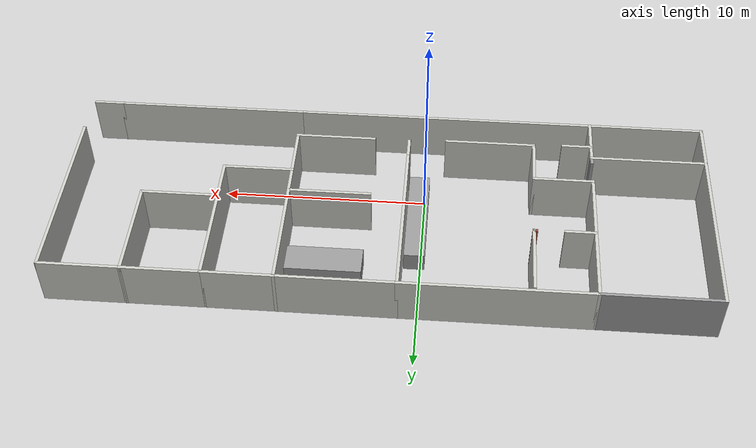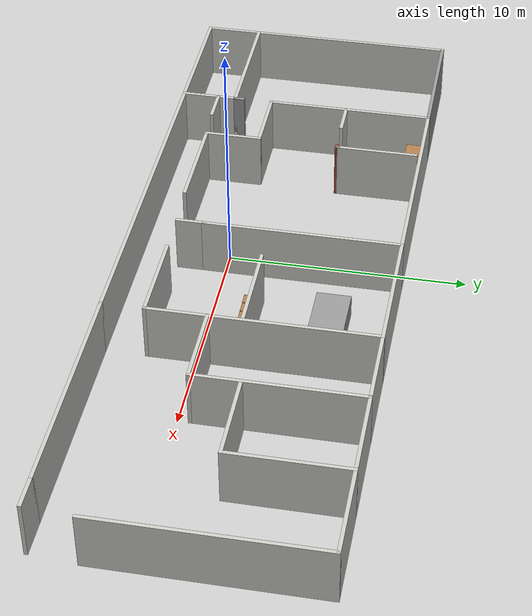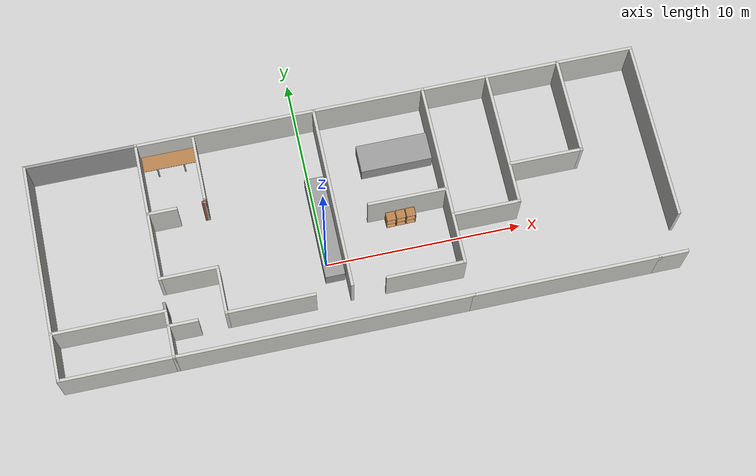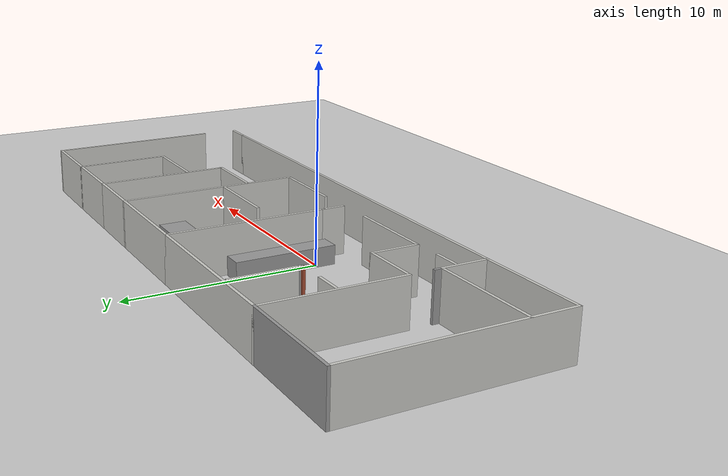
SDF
<sdf version="1.6">
 <world name="default">
  <model name="ground_plane">
   <static>1</static>
   <link name="link">
    <collision name="collision">
     <geometry><plane><normal>0 0 1</normal><size>100 100</size></plane></geometry>
     <surface><friction><ode><mu>100</mu><mu2>50</mu2></ode></friction></surface>
    </collision>
    <visual name="visual">
     <cast_shadows>0</cast_shadows>
     <geometry><plane><normal>0 0 1</normal><size>100 100</size></plane></geometry>
     <material>
      <script><uri>file://media/materials/scripts/gazebo.material</uri><name>Gazebo/Grey</name></script>
     </material>
    </visual>
   </link>
  </model>
  <model name="workplace">
   <pose>1.82011 1.79563 0 0 -0 0</pose>
   <link name="Wall_0">
    <collision name="Wall_0_Collision">
     <geometry><box><size>8.25 0.15 2.5</size></box></geometry>
     <pose>0 0 1.25 0 -0 0</pose>
    </collision>
    <visual name="Wall_0_Visual">
     <pose>0 0 1.25 0 -0 0</pose>
     <geometry><box><size>8.25 0.15 2.5</size></box></geometry>
     <material>
      <script><uri>file://media/materials/scripts/gazebo.material</uri><name>Gazebo/CeilingTiled</name></script>
      <ambient>1 1 1 1</ambient>
     </material>
     <meta><layer>0</layer></meta>
    </visual>
    <pose>-0.915173 1.35976 0 0 -0 1.5708</pose>
   </link>
   <link name="Wall_10">
    <collision name="Wall_10_Collision">
     <geometry><box><size>1.25 0.15 2.5</size></box></geometry>
     <pose>0 0 1.25 0 -0 0</pose>
    </collision>
    <visual name="Wall_10_Visual">
     <pose>0 0 1.25 0 -0 0</pose>
     <geometry><box><size>1.25 0.15 2.5</size></box></geometry>
     <material>
      <script><uri>file://media/materials/scripts/gazebo.material</uri><name>Gazebo/CeilingTiled</name></script>
      <ambient>1 1 1 1</ambient>
     </material>
     <meta><layer>0</layer></meta>
    </visual>
    <pose>-0.915173 -3.24024 0 0 -0 -1.5708</pose>
   </link>
   <link name="Wall_15">
    <collision name="Wall_15_Collision">
     <geometry><box><size>14.75 0.15 2.5</size></box></geometry>
     <pose>0 0 1.25 0 -0 0</pose>
    </collision>
    <visual name="Wall_15_Visual">
     <pose>0 0 1.25 0 -0 0</pose>
     <geometry><box><size>14.75 0.15 2.5</size></box></geometry>
     <material>
      <script><uri>file://media/materials/scripts/gazebo.material</uri><name>Gazebo/CeilingTiled</name></script>
      <ambient>1 1 1 1</ambient>
     </material>
     <meta><layer>0</layer></meta>
    </visual>
    <pose>-2.55759 -5.55178 0 0 -0 0</pose>
   </link>
   <link name="Wall_18">
    <collision name="Wall_18_Collision">
     <geometry><box><size>5.75 0.15 2.5</size></box></geometry>
     <pose>0 0 1.25 0 -0 0</pose>
    </collision>
    <visual name="Wall_18_Visual">
     <pose>0 0 1.25 0 -0 0</pose>
     <geometry><box><size>5.75 0.15 2.5</size></box></geometry>
     <material>
      <script><uri>file://media/materials/scripts/gazebo.material</uri><name>Gazebo/CeilingTiled</name></script>
      <ambient>1 1 1 1</ambient>
     </material>
     <meta><layer>0</layer></meta>
    </visual>
    <pose>1.90232 5.54454 0 0 -0 0</pose>
   </link>
   <link name="Wall_19">
    <collision name="Wall_19_Collision">
     <geometry><box><size>9.5 0.15 2.5</size></box></geometry>
     <pose>0 0 1.25 0 -0 0</pose>
    </collision>
    <visual name="Wall_19_Visual">
     <pose>0 0 1.25 0 -0 0</pose>
     <geometry><box><size>9.5 0.15 2.5</size></box></geometry>
     <material>
      <script><uri>file://media/materials/scripts/gazebo.material</uri><name>Gazebo/CeilingTiled</name></script>
      <ambient>1 1 1 1</ambient>
     </material>
     <meta><layer>0</layer></meta>
    </visual>
    <pose>4.70232 0.869544 0 0 -0 -1.5708</pose>
   </link>
   <link name="Wall_2">
    <collision name="Wall_2_Collision">
     <geometry><box><size>7.25 0.15 2.5</size></box></geometry>
     <pose>0 0 1.25 0 -0 0</pose>
    </collision>
    <visual name="Wall_2_Visual">
     <pose>0 0 1.25 0 -0 0</pose>
     <geometry><box><size>7.25 0.15 2.5</size></box></geometry>
     <material>
      <script><uri>file://media/materials/scripts/gazebo.material</uri><name>Gazebo/CeilingTiled</name></script>
      <ambient>1 1 1 1</ambient>
     </material>
     <meta><layer>0</layer></meta>
    </visual>
    <pose>-9.99768 1.99454 0 0 -0 -1.5708</pose>
   </link>
   <link name="Wall_20">
    <collision name="Wall_20_Collision">
     <geometry><box><size>4 0.15 2.5</size></box></geometry>
     <pose>0 0 1.25 0 -0 0</pose>
    </collision>
    <visual name="Wall_20_Visual">
     <pose>0 0 1.25 0 -0 0</pose>
     <geometry><box><size>4 0.15 2.5</size></box></geometry>
     <material>
      <script><uri>file://media/materials/scripts/gazebo.material</uri><name>Gazebo/CeilingTiled</name></script>
      <ambient>1 1 1 1</ambient>
     </material>
     <meta><layer>0</layer></meta>
    </visual>
    <pose>2.77732 -3.80546 0 0 -0 3.14159</pose>
   </link>
   <link name="Wall_22">
    <collision name="Wall_22_Collision">
     <geometry><box><size>4 0.15 2.5</size></box></geometry>
     <pose>0 0 1.25 0 -0 0</pose>
    </collision>
    <visual name="Wall_22_Visual">
     <pose>0 0 1.25 0 -0 0</pose>
     <geometry><box><size>4 0.15 2.5</size></box></geometry>
     <material>
      <script><uri>file://media/materials/scripts/gazebo.material</uri><name>Gazebo/CeilingTiled</name></script>
      <ambient>1 1 1 1</ambient>
     </material>
     <meta><layer>0</layer></meta>
    </visual>
    <pose>2.69206 0.076156 0 0 -0 3.14159</pose>
   </link>
   <link name="Wall_29">
    <collision name="Wall_29_Collision">
     <geometry><box><size>3.5 0.15 2.5</size></box></geometry>
     <pose>0 0 1.25 0 -0 0</pose>
    </collision>
    <visual name="Wall_29_Visual">
     <pose>0 0 1.25 0 -0 0</pose>
     <geometry><box><size>3.5 0.15 2.5</size></box></geometry>
     <material>
      <script><uri>file://media/materials/scripts/gazebo.material</uri><name>Gazebo/CeilingTiled</name></script>
      <ambient>1 1 1 1</ambient>
     </material>
     <meta><layer>0</layer></meta>
    </visual>
    <pose>-7.11284 3.66004 0 0 -0 1.5708</pose>
   </link>
   <link name="Wall_3">
    <collision name="Wall_3_Collision">
     <geometry><box><size>3 0.15 2.5</size></box></geometry>
     <pose>0 0 1.25 0 -0 0</pose>
    </collision>
    <visual name="Wall_3_Visual">
     <pose>0 0 1.25 0 -0 0</pose>
     <geometry><box><size>3 0.15 2.5</size></box></geometry>
     <material>
      <script><uri>file://media/materials/scripts/gazebo.material</uri><name>Gazebo/CeilingTiled</name></script>
      <ambient>1 1 1 1</ambient>
     </material>
     <meta><layer>0</layer></meta>
    </visual>
    <pose>-8.57268 -1.55546 0 0 -0 0</pose>
   </link>
   <link name="Wall_32">
    <collision name="Wall_32_Collision">
     <geometry><box><size>1.5 0.15 2.5</size></box></geometry>
     <pose>0 0 1.25 0 -0 0</pose>
    </collision>
    <visual name="Wall_32_Visual">
     <pose>0 0 1.25 0 -0 0</pose>
     <geometry><box><size>1.5 0.15 2.5</size></box></geometry>
     <material>
      <script><uri>file://media/materials/scripts/gazebo.material</uri><name>Gazebo/CeilingTiled</name></script>
      <ambient>1 1 1 1</ambient>
     </material>
     <meta><layer>0</layer></meta>
    </visual>
    <pose>-9.27823 1.85026 0 0 -0 0</pose>
   </link>
   <link name="Wall_39">
    <collision name="Wall_39_Collision">
     <geometry><box><size>0.25 0.15 2.5</size></box></geometry>
     <pose>0 0 1.25 0 -0 0</pose>
    </collision>
    <visual name="Wall_39_Visual">
     <pose>0 0 1.25 0 -0 0</pose>
     <geometry><box><size>0.25 0.15 2.5</size></box></geometry>
     <material>
      <script><uri>file://media/materials/scripts/gazebo.material</uri><name>Gazebo/Grey</name></script>
      <ambient>1 1 1 1</ambient>
     </material>
     <meta><layer>0</layer></meta>
    </visual>
    <pose>-7.11284 1.93504 0 0 -0 -1.5708</pose>
   </link>
   <link name="Wall_4">
    <collision name="Wall_4_Collision">
     <geometry><box><size>2.5 0.15 2.5</size></box></geometry>
     <pose>0 0 1.25 0 -0 0</pose>
    </collision>
    <visual name="Wall_4_Visual">
     <pose>0 0 1.25 0 -0 0</pose>
     <geometry><box><size>2.5 0.15 2.5</size></box></geometry>
     <material>
      <script><uri>file://media/materials/scripts/gazebo.material</uri><name>Gazebo/CeilingTiled</name></script>
      <ambient>1 1 1 1</ambient>
     </material>
     <meta><layer>0</layer></meta>
    </visual>
    <pose>-7.14768 -2.73046 0 0 -0 -1.5708</pose>
   </link>
   <link name="Wall_40">
    <collision name="Wall_40_Collision">
     <geometry><box><size>0.25 0.15 2.5</size></box></geometry>
     <pose>0 0 1.25 0 -0 0</pose>
    </collision>
    <visual name="Wall_40_Visual">
     <pose>0 0 1.25 0 -0 0</pose>
     <geometry><box><size>0.25 0.15 2.5</size></box></geometry>
     <material>
      <script><uri>file://media/materials/scripts/gazebo.material</uri><name>Gazebo/Bricks</name></script>
      <ambient>1 1 1 1</ambient>
     </material>
     <meta><layer>0</layer></meta>
    </visual>
    <pose>-7.16284 1.88504 0 0 -0 3.14159</pose>
   </link>
   <link name="Wall_5">
    <collision name="Wall_5_Collision">
     <geometry><box><size>4.5 0.15 2.5</size></box></geometry>
     <pose>0 0 1.25 0 -0 0</pose>
    </collision>
    <visual name="Wall_5_Visual">
     <pose>0 0 1.25 0 -0 0</pose>
     <geometry><box><size>4.5 0.15 2.5</size></box></geometry>
     <material>
      <script><uri>file://media/materials/scripts/gazebo.material</uri><name>Gazebo/CeilingTiled</name></script>
      <ambient>1 1 1 1</ambient>
     </material>
     <meta><layer>0</layer></meta>
    </visual>
    <pose>-4.97268 -3.90546 0 0 -0 0</pose>
   </link>
   <link name="Wall_59">
    <collision name="Wall_59_Collision">
     <geometry><box><size>5.75 0.15 2.5</size></box></geometry>
     <pose>0 0 1.25 0 -0 0</pose>
    </collision>
    <visual name="Wall_59_Visual">
     <pose>0 0 1.25 0 -0 0</pose>
     <geometry><box><size>5.75 0.15 2.5</size></box></geometry>
     <material>
      <script><uri>file://media/materials/scripts/gazebo.material</uri><name>Gazebo/Grey</name></script>
      <ambient>1 1 1 1</ambient>
     </material>
     <meta><layer>0</layer></meta>
    </visual>
    <pose>-12.7977 5.54454 0 0 -0 3.14159</pose>
   </link>
   <link name="Wall_60">
    <collision name="Wall_60_Collision">
     <geometry><box><size>11.25 0.15 2.5</size></box></geometry>
     <pose>0 0 1.25 0 -0 0</pose>
    </collision>
    <visual name="Wall_60_Visual">
     <pose>0 0 1.25 0 -0 0</pose>
     <geometry><box><size>11.25 0.15 2.5</size></box></geometry>
     <material>
      <script><uri>file://media/materials/scripts/gazebo.material</uri><name>Gazebo/CeilingTiled</name></script>
      <ambient>1 1 1 1</ambient>
     </material>
     <meta><layer>0</layer></meta>
    </visual>
    <pose>-15.5977 -0.005456 0 0 -0 -1.5708</pose>
   </link>
   <link name="Wall_61">
    <collision name="Wall_61_Collision">
     <geometry><box><size>5.75 0.15 2.5</size></box></geometry>
     <pose>0 0 1.25 0 -0 0</pose>
    </collision>
    <visual name="Wall_61_Visual">
     <pose>0 0 1.25 0 -0 0</pose>
     <geometry><box><size>5.75 0.15 2.5</size></box></geometry>
     <material>
      <script><uri>file://media/materials/scripts/gazebo.material</uri><name>Gazebo/CeilingTiled</name></script>
      <ambient>1 1 1 1</ambient>
     </material>
     <meta><layer>0</layer></meta>
    </visual>
    <pose>-12.7977 -5.55546 0 0 -0 0</pose>
   </link>
   <link name="Wall_62">
    <collision name="Wall_62_Collision">
     <geometry><box><size>2.5 0.15 2.5</size></box></geometry>
     <pose>0 0 1.25 0 -0 0</pose>
    </collision>
    <visual name="Wall_62_Visual">
     <pose>0 0 1.25 0 -0 0</pose>
     <geometry><box><size>2.5 0.15 2.5</size></box></geometry>
     <material>
      <script><uri>file://media/materials/scripts/gazebo.material</uri><name>Gazebo/CeilingTiled</name></script>
      <ambient>1 1 1 1</ambient>
     </material>
     <meta><layer>0</layer></meta>
    </visual>
    <pose>-9.99768 -4.38046 0 0 -0 1.5708</pose>
   </link>
   <link name="Wall_63">
    <collision name="Wall_63_Collision">
     <geometry><box><size>5.75 0.15 2.5</size></box></geometry>
     <pose>0 0 1.25 0 -0 0</pose>
    </collision>
    <visual name="Wall_63_Visual">
     <pose>0 0 1.25 0 -0 0</pose>
     <geometry><box><size>5.75 0.15 2.5</size></box></geometry>
     <material>
      <script><uri>file://media/materials/scripts/gazebo.material</uri><name>Gazebo/CeilingTiled</name></script>
      <ambient>1 1 1 1</ambient>
     </material>
     <meta><layer>0</layer></meta>
    </visual>
    <pose>-12.7977 -3.20546 0 0 -0 3.14159</pose>
   </link>
   <link name="Wall_65">
    <collision name="Wall_65_Collision">
     <geometry><box><size>1.5 0.15 2.5</size></box></geometry>
     <pose>0 0 1.25 0 -0 0</pose>
    </collision>
    <visual name="Wall_65_Visual">
     <pose>0 0 1.25 0 -0 0</pose>
     <geometry><box><size>1.5 0.15 2.5</size></box></geometry>
     <material>
      <script><uri>file://media/materials/scripts/gazebo.material</uri><name>Gazebo/CeilingTiled</name></script>
      <ambient>1 1 1 1</ambient>
     </material>
     <meta><layer>0</layer></meta>
    </visual>
    <pose>-9.27951 -3.98773 0 0 -0 0</pose>
   </link>
   <link name="Wall_68">
    <collision name="Wall_68_Collision">
     <geometry><box><size>0.5 0.15 2.5</size></box></geometry>
     <pose>0 0 1.25 0 -0 0</pose>
    </collision>
    <visual name="Wall_68_Visual">
     <pose>0 0 1.25 0 -0 0</pose>
     <geometry><box><size>0.5 0.15 2.5</size></box></geometry>
     <material>
      <script><uri>file://media/materials/scripts/gazebo.material</uri><name>Gazebo/Grey</name></script>
      <ambient>1 1 1 1</ambient>
     </material>
     <meta><layer>0</layer></meta>
    </visual>
    <pose>-9.99768 -3.03046 0 0 -0 1.5708</pose>
   </link>
   <link name="Wall_70">
    <collision name="Wall_70_Collision">
     <geometry><box><size>3.5 0.15 2.5</size></box></geometry>
     <pose>0 0 1.25 0 -0 0</pose>
    </collision>
    <visual name="Wall_70_Visual">
     <pose>0 0 1.25 0 -0 0</pose>
     <geometry><box><size>3.5 0.15 2.5</size></box></geometry>
     <material>
      <script><uri>file://media/materials/scripts/gazebo.material</uri><name>Gazebo/CeilingTiled</name></script>
      <ambient>1 1 1 1</ambient>
     </material>
     <meta><layer>0</layer></meta>
    </visual>
    <pose>6.37732 5.54454 0 0 -0 0</pose>
   </link>
   <link name="Wall_73">
    <collision name="Wall_73_Collision">
     <geometry><box><size>7 0.15 2.5</size></box></geometry>
     <pose>0 0 1.25 0 -0 0</pose>
    </collision>
    <visual name="Wall_73_Visual">
     <pose>0 0 1.25 0 -0 0</pose>
     <geometry><box><size>7 0.15 2.5</size></box></geometry>
     <material>
      <script><uri>file://media/materials/scripts/gazebo.material</uri><name>Gazebo/CeilingTiled</name></script>
      <ambient>1 1 1 1</ambient>
     </material>
     <meta><layer>0</layer></meta>
    </visual>
    <pose>8.05232 2.11954 0 0 -0 -1.5708</pose>
   </link>
   <link name="Wall_76">
    <collision name="Wall_76_Collision">
     <geometry><box><size>3.5 0.15 2.5</size></box></geometry>
     <pose>0 0 1.25 0 -0 0</pose>
    </collision>
    <visual name="Wall_76_Visual">
     <pose>0 0 1.25 0 -0 0</pose>
     <geometry><box><size>3.5 0.15 2.5</size></box></geometry>
     <material>
      <script><uri>file://media/materials/scripts/gazebo.material</uri><name>Gazebo/CeilingTiled</name></script>
      <ambient>1 1 1 1</ambient>
     </material>
     <meta><layer>0</layer></meta>
    </visual>
    <pose>6.37732 -1.30546 0 0 -0 3.14159</pose>
   </link>
   <link name="Wall_78">
    <collision name="Wall_78_Collision">
     <geometry><box><size>9.5 0.15 2.5</size></box></geometry>
     <pose>0 0 1.25 0 -0 0</pose>
    </collision>
    <visual name="Wall_78_Visual">
     <pose>0 0 1.25 0 -0 0</pose>
     <geometry><box><size>9.5 0.15 2.5</size></box></geometry>
     <material>
      <script><uri>file://media/materials/scripts/gazebo.material</uri><name>Gazebo/CeilingTiled</name></script>
      <ambient>1 1 1 1</ambient>
     </material>
     <meta><layer>0</layer></meta>
    </visual>
    <pose>9.41741 -5.55178 0 0 -0 0</pose>
   </link>
   <link name="Wall_8">
    <collision name="Wall_8_Collision">
     <geometry><box><size>9.25 0.15 2.5</size></box></geometry>
     <pose>0 0 1.25 0 -0 0</pose>
    </collision>
    <visual name="Wall_8_Visual">
     <pose>0 0 1.25 0 -0 0</pose>
     <geometry><box><size>9.25 0.15 2.5</size></box></geometry>
     <material>
      <script><uri>file://media/materials/scripts/gazebo.material</uri><name>Gazebo/CeilingTiled</name></script>
      <ambient>1 1 1 1</ambient>
     </material>
     <meta><layer>0</layer></meta>
    </visual>
    <pose>-5.44768 5.54454 0 0 -0 0</pose>
   </link>
   <link name="Wall_82">
    <collision name="Wall_82_Collision">
     <geometry><box><size>3.75 0.15 2.5</size></box></geometry>
     <pose>0 0 1.25 0 -0 0</pose>
    </collision>
    <visual name="Wall_82_Visual">
     <pose>0 0 1.25 0 -0 0</pose>
     <geometry><box><size>3.75 0.15 2.5</size></box></geometry>
     <material>
      <script><uri>file://media/materials/scripts/gazebo.material</uri><name>Gazebo/CeilingTiled</name></script>
      <ambient>1 1 1 1</ambient>
     </material>
     <meta><layer>0</layer></meta>
    </visual>
    <pose>9.94768 0.70524 0 0 -0 0</pose>
   </link>
   <link name="Wall_83">
    <collision name="Wall_83_Collision">
     <geometry><box><size>5 0.15 2.5</size></box></geometry>
     <pose>0 0 1.25 0 -0 0</pose>
    </collision>
    <visual name="Wall_83_Visual">
     <pose>0 0 1.25 0 -0 0</pose>
     <geometry><box><size>5 0.15 2.5</size></box></geometry>
     <material>
      <script><uri>file://media/materials/scripts/gazebo.material</uri><name>Gazebo/CeilingTiled</name></script>
      <ambient>1 1 1 1</ambient>
     </material>
     <meta><layer>0</layer></meta>
    </visual>
    <pose>11.7477 3.13024 0 0 -0 1.5708</pose>
   </link>
   <link name="Wall_84">
    <collision name="Wall_84_Collision">
     <geometry><box><size>3.84538 0.15 2.5</size></box></geometry>
     <pose>0 0 1.25 0 -0 0</pose>
    </collision>
    <visual name="Wall_84_Visual">
     <pose>0 0 1.25 0 -0 0</pose>
     <geometry><box><size>3.84538 0.15 2.5</size></box></geometry>
     <material>
      <script><uri>file://media/materials/scripts/gazebo.material</uri><name>Gazebo/CeilingTiled</name></script>
      <ambient>1 1 1 1</ambient>
     </material>
     <meta><layer>0</layer></meta>
    </visual>
    <pose>9.9 5.54989 0 0 -0 -3.1387</pose>
   </link>
   <link name="Wall_89">
    <collision name="Wall_89_Collision">
     <geometry><box><size>4 0.15 2.5</size></box></geometry>
     <pose>0 0 1.25 0 -0 0</pose>
    </collision>
    <visual name="Wall_89_Visual">
     <pose>0 0 1.25 0 -0 0</pose>
     <geometry><box><size>4 0.15 2.5</size></box></geometry>
     <material>
      <script><uri>file://media/materials/scripts/gazebo.material</uri><name>Gazebo/CeilingTiled</name></script>
      <ambient>1 1 1 1</ambient>
     </material>
     <meta><layer>0</layer></meta>
    </visual>
    <pose>13.6727 5.55524 0 0 -0 0</pose>
   </link>
   <link name="Wall_90">
    <collision name="Wall_90_Collision">
     <geometry><box><size>9.25 0.15 2.5</size></box></geometry>
     <pose>0 0 1.25 0 -0 0</pose>
    </collision>
    <visual name="Wall_90_Visual">
     <pose>0 0 1.25 0 -0 0</pose>
     <geometry><box><size>9.25 0.15 2.5</size></box></geometry>
     <material>
      <script><uri>file://media/materials/scripts/gazebo.material</uri><name>Gazebo/CeilingTiled</name></script>
      <ambient>1 1 1 1</ambient>
     </material>
     <meta><layer>0</layer></meta>
    </visual>
    <pose>15.5977 1.00524 0 0 -0 -1.5708</pose>
   </link>
   <link name="Wall_92">
    <collision name="Wall_92_Collision">
     <geometry><box><size>1.5 0.15 2.5</size></box></geometry>
     <pose>0 0 1.25 0 -0 0</pose>
    </collision>
    <visual name="Wall_92_Visual">
     <pose>0 0 1.25 0 -0 0</pose>
     <geometry><box><size>1.5 0.15 2.5</size></box></geometry>
     <material>
      <script><uri>file://media/materials/scripts/gazebo.material</uri><name>Gazebo/CeilingTiled</name></script>
      <ambient>1 1 1 1</ambient>
     </material>
     <meta><layer>0</layer></meta>
    </visual>
    <pose>14.7674 -5.55178 0 0 -0 0</pose>
   </link>
   <static>1</static>
  </model>
  <model name="table_clone">
   <link name="link">
    <pose>0.29068 0 0 0 -0 0</pose>
    <inertial>
     <inertia><ixx>0</ixx><ixy>0</ixy><ixz>0</ixz><iyy>0</iyy><iyz>0</iyz><izz>0</izz></inertia>
     <mass>0</mass>
    </inertial>
    <visual name="back_left_leg">
     <pose>-0.68 0.38 0.5 0 -0 0</pose>
     <geometry><cylinder><radius>0.0363517</radius><length>1</length></cylinder></geometry>
     <material>
      <script><uri>file://media/materials/scripts/gazebo.material</uri><name>Gazebo/Grey</name></script>
     </material>
    </visual>
    <visual name="front_right_leg">
     <pose>0.68 -0.38 0.5 0 -0 0</pose>
     <geometry><cylinder><radius>0.0363517</radius><length>1</length></cylinder></geometry>
     <material>
      <script><uri>file://media/materials/scripts/gazebo.material</uri><name>Gazebo/Grey</name></script>
     </material>
    </visual>
    <visual name="back_right_leg">
     <pose>-0.68 -0.38 0.5 0 -0 0</pose>
     <geometry><cylinder><radius>0.0363517</radius><length>1</length></cylinder></geometry>
     <material>
      <script><uri>file://media/materials/scripts/gazebo.material</uri><name>Gazebo/Grey</name></script>
     </material>
    </visual>
    <visual name="front_left_leg">
     <pose>0.68 0.38 0.5 0 -0 0</pose>
     <geometry><cylinder><radius>0.0363517</radius><length>1</length></cylinder></geometry>
     <material>
      <script><uri>file://media/materials/scripts/gazebo.material</uri><name>Gazebo/Grey</name></script>
     </material>
    </visual>
    <visual name="visual1">
     <pose>0 0 1 0 -0 0</pose>
     <geometry><box><size>2.76183 0.8 0.03</size></box></geometry>
     <material>
      <script><uri>file://media/materials/scripts/gazebo.material</uri><name>Gazebo/Wood</name></script>
     </material>
    </visual>
    <collision name="front_left_leg">
     <pose>0.68 0.38 0.5 0 -0 0</pose>
     <geometry><cylinder><radius>0.036352</radius><length>1</length></cylinder></geometry>
     <surface>
      <friction>
       <ode><mu>1</mu><mu2>1</mu2><fdir1>0 0 0</fdir1><slip1>0</slip1><slip2>0</slip2></ode>
       <torsional>
        <coefficient>1</coefficient>
        <patch_radius>0</patch_radius>
        <surface_radius>0</surface_radius>
        <use_patch_radius>1</use_patch_radius>
        <ode><slip>0</slip></ode>
       </torsional>
      </friction>
      <bounce><restitution_coefficient>0</restitution_coefficient><threshold>1e+06</threshold></bounce>
      <contact>
       <collide_without_contact>0</collide_without_contact>
       <collide_without_contact_bitmask>1</collide_without_contact_bitmask>
       <collide_bitmask>1</collide_bitmask>
       <ode>
        <soft_cfm>0</soft_cfm>
        <soft_erp>0.2</soft_erp>
        <kp>1e+13</kp>
        <kd>1</kd>
        <max_vel>0.01</max_vel>
        <min_depth>0</min_depth>
       </ode>
       <bullet>
        <split_impulse>1</split_impulse>
        <split_impulse_penetration_threshold>-0.01</split_impulse_penetration_threshold>
        <soft_cfm>0</soft_cfm>
        <soft_erp>0.2</soft_erp>
        <kp>1e+13</kp>
        <kd>1</kd>
       </bullet>
      </contact>
     </surface>
    </collision>
    <collision name="front_right_leg">
     <pose>0.68 -0.38 0.5 0 -0 0</pose>
     <geometry><cylinder><radius>0.036352</radius><length>1</length></cylinder></geometry>
     <surface>
      <friction>
       <ode><mu>1</mu><mu2>1</mu2><fdir1>0 0 0</fdir1><slip1>0</slip1><slip2>0</slip2></ode>
       <torsional>
        <coefficient>1</coefficient>
        <patch_radius>0</patch_radius>
        <surface_radius>0</surface_radius>
        <use_patch_radius>1</use_patch_radius>
        <ode><slip>0</slip></ode>
       </torsional>
      </friction>
      <bounce><restitution_coefficient>0</restitution_coefficient><threshold>1e+06</threshold></bounce>
      <contact>
       <collide_without_contact>0</collide_without_contact>
       <collide_without_contact_bitmask>1</collide_without_contact_bitmask>
       <collide_bitmask>1</collide_bitmask>
       <ode>
        <soft_cfm>0</soft_cfm>
        <soft_erp>0.2</soft_erp>
        <kp>1e+13</kp>
        <kd>1</kd>
        <max_vel>0.01</max_vel>
        <min_depth>0</min_depth>
       </ode>
       <bullet>
        <split_impulse>1</split_impulse>
        <split_impulse_penetration_threshold>-0.01</split_impulse_penetration_threshold>
        <soft_cfm>0</soft_cfm>
        <soft_erp>0.2</soft_erp>
        <kp>1e+13</kp>
        <kd>1</kd>
       </bullet>
      </contact>
     </surface>
    </collision>
    <collision name="back_right_leg">
     <pose>-0.68 -0.38 0.5 0 -0 0</pose>
     <geometry><cylinder><radius>0.036352</radius><length>1</length></cylinder></geometry>
     <surface>
      <friction>
       <ode><mu>1</mu><mu2>1</mu2><fdir1>0 0 0</fdir1><slip1>0</slip1><slip2>0</slip2></ode>
       <torsional>
        <coefficient>1</coefficient>
        <patch_radius>0</patch_radius>
        <surface_radius>0</surface_radius>
        <use_patch_radius>1</use_patch_radius>
        <ode><slip>0</slip></ode>
       </torsional>
      </friction>
      <bounce><restitution_coefficient>0</restitution_coefficient><threshold>1e+06</threshold></bounce>
      <contact>
       <collide_without_contact>0</collide_without_contact>
       <collide_without_contact_bitmask>1</collide_without_contact_bitmask>
       <collide_bitmask>1</collide_bitmask>
       <ode>
        <soft_cfm>0</soft_cfm>
        <soft_erp>0.2</soft_erp>
        <kp>1e+13</kp>
        <kd>1</kd>
        <max_vel>0.01</max_vel>
        <min_depth>0</min_depth>
       </ode>
       <bullet>
        <split_impulse>1</split_impulse>
        <split_impulse_penetration_threshold>-0.01</split_impulse_penetration_threshold>
        <soft_cfm>0</soft_cfm>
        <soft_erp>0.2</soft_erp>
        <kp>1e+13</kp>
        <kd>1</kd>
       </bullet>
      </contact>
     </surface>
    </collision>
    <collision name="back_left_leg">
     <pose>-0.68 0.38 0.5 0 -0 0</pose>
     <geometry><cylinder><radius>0.036352</radius><length>1</length></cylinder></geometry>
     <surface>
      <friction>
       <ode><mu>1</mu><mu2>1</mu2><fdir1>0 0 0</fdir1><slip1>0</slip1><slip2>0</slip2></ode>
       <torsional>
        <coefficient>1</coefficient>
        <patch_radius>0</patch_radius>
        <surface_radius>0</surface_radius>
        <use_patch_radius>1</use_patch_radius>
        <ode><slip>0</slip></ode>
       </torsional>
      </friction>
      <bounce><restitution_coefficient>0</restitution_coefficient><threshold>1e+06</threshold></bounce>
      <contact>
       <collide_without_contact>0</collide_without_contact>
       <collide_without_contact_bitmask>1</collide_without_contact_bitmask>
       <collide_bitmask>1</collide_bitmask>
       <ode>
        <soft_cfm>0</soft_cfm>
        <soft_erp>0.2</soft_erp>
        <kp>1e+13</kp>
        <kd>1</kd>
        <max_vel>0.01</max_vel>
        <min_depth>0</min_depth>
       </ode>
       <bullet>
        <split_impulse>1</split_impulse>
        <split_impulse_penetration_threshold>-0.01</split_impulse_penetration_threshold>
        <soft_cfm>0</soft_cfm>
        <soft_erp>0.2</soft_erp>
        <kp>1e+13</kp>
        <kd>1</kd>
       </bullet>
      </contact>
     </surface>
    </collision>
    <collision name="surface">
     <pose>0 0 1 0 -0 0</pose>
     <geometry><box><size>2.76183 0.8 0.03</size></box></geometry>
     <surface>
      <friction>
       <ode><mu>0.6</mu><mu2>0.6</mu2><fdir1>0 0 0</fdir1><slip1>0</slip1><slip2>0</slip2></ode>
       <torsional>
        <coefficient>1</coefficient>
        <patch_radius>0</patch_radius>
        <surface_radius>0</surface_radius>
        <use_patch_radius>1</use_patch_radius>
        <ode><slip>0</slip></ode>
       </torsional>
      </friction>
      <bounce><restitution_coefficient>0</restitution_coefficient><threshold>1e+06</threshold></bounce>
      <contact>
       <collide_without_contact>0</collide_without_contact>
       <collide_without_contact_bitmask>1</collide_without_contact_bitmask>
       <collide_bitmask>1</collide_bitmask>
       <ode>
        <soft_cfm>0</soft_cfm>
        <soft_erp>0.2</soft_erp>
        <kp>1e+13</kp>
        <kd>1</kd>
        <max_vel>0.01</max_vel>
        <min_depth>0</min_depth>
       </ode>
       <bullet>
        <split_impulse>1</split_impulse>
        <split_impulse_penetration_threshold>-0.01</split_impulse_penetration_threshold>
        <soft_cfm>0</soft_cfm>
        <soft_erp>0.2</soft_erp>
        <kp>1e+13</kp>
        <kd>1</kd>
       </bullet>
      </contact>
     </surface>
    </collision>
   </link>
   <static>1</static>
   <pose>-6.96854 6.8597 0 0 -0 0</pose>
  </model>
  <model name="cabinet">
   <static>1</static>
   <link name="cabinet_bottom_plate">
    <inertial>
     <pose>0 0 -1 0 -0 0</pose>
     <inertia><ixx>2.05</ixx><ixy>0</ixy><ixz>0</ixz><iyy>2.05</iyy><iyz>0</iyz><izz>2.05</izz></inertia>
     <mass>25</mass>
    </inertial>
    <collision name="cabinet_bottom_plate_geom">
     <pose>0 0 0.01 0 -0 0</pose>
     <geometry><box><size>0.45 0.45 0.02</size></box></geometry>
    </collision>
    <visual name="cabinet_bottom_plate_geom_visual">
     <pose>0 0 0.01 0 -0 0</pose>
     <geometry><box><size>0.45 0.45 0.02</size></box></geometry>
     <material>
      <script><uri>file://media/materials/scripts/gazebo.material</uri><name>Gazebo/Wood</name></script>
     </material>
    </visual>
    <collision name="cabinet_bottom_plate_geom_cabinet_back_plate">
     <pose>0.235 0 0.51 0 -0 0</pose>
     <geometry><box><size>0.02 0.45 1.02</size></box></geometry>
    </collision>
    <visual name="cabinet_bottom_plate_geom_cabinet_back_plate_visual">
     <pose>0.235 0 0.51 0 -0 0</pose>
     <geometry><box><size>0.02 0.45 1.02</size></box></geometry>
     <material>
      <script><uri>file://media/materials/scripts/gazebo.material</uri><name>Gazebo/Wood</name></script>
     </material>
    </visual>
    <collision name="cabinet_bottom_plate_geom_cabinet_left_plate">
     <pose>0 0.235 0.51 0 -0 0</pose>
     <geometry><box><size>0.45 0.02 1.02</size></box></geometry>
    </collision>
    <visual name="cabinet_bottom_plate_geom_cabinet_left_plate_visual">
     <pose>0 0.235 0.51 0 -0 0</pose>
     <geometry><box><size>0.45 0.02 1.02</size></box></geometry>
     <material>
      <script><uri>file://media/materials/scripts/gazebo.material</uri><name>Gazebo/Wood</name></script>
     </material>
    </visual>
    <collision name="cabinet_bottom_plate_geom_cabinet_middle_plate">
     <pose>0 0 0.51 0 -0 0</pose>
     <geometry><box><size>0.45 0.45 0.02</size></box></geometry>
    </collision>
    <visual name="cabinet_bottom_plate_geom_cabinet_middle_plate_visual">
     <pose>0 0 0.51 0 -0 0</pose>
     <geometry><box><size>0.45 0.45 0.02</size></box></geometry>
     <material>
      <script><uri>file://media/materials/scripts/gazebo.material</uri><name>Gazebo/Wood</name></script>
     </material>
    </visual>
    <collision name="cabinet_bottom_plate_geom_cabinet_right_plate">
     <pose>0 -0.235 0.51 0 -0 0</pose>
     <geometry><box><size>0.45 0.02 1.02</size></box></geometry>
    </collision>
    <visual name="cabinet_bottom_plate_geom_cabinet_right_plate_visual">
     <pose>0 -0.235 0.51 0 -0 0</pose>
     <geometry><box><size>0.45 0.02 1.02</size></box></geometry>
     <material>
      <script><uri>file://media/materials/scripts/gazebo.material</uri><name>Gazebo/Wood</name></script>
     </material>
    </visual>
    <collision name="cabinet_bottom_plate_geom_cabinet_top_plate">
     <pose>0 0 1.01 0 -0 0</pose>
     <geometry><box><size>0.45 0.45 0.02</size></box></geometry>
    </collision>
    <visual name="cabinet_bottom_plate_geom_cabinet_top_plate_visual">
     <pose>0 0 1.01 0 -0 0</pose>
     <geometry><box><size>0.45 0.45 0.02</size></box></geometry>
     <material>
      <script><uri>file://media/materials/scripts/gazebo.material</uri><name>Gazebo/Wood</name></script>
     </material>
    </visual>
   </link>
   <pose>3.64335 1.52742 0 0 -0 1.57716</pose>
  </model>
  <model name="cabinet_clone">
   <static>1</static>
   <link name="cabinet_bottom_plate">
    <inertial>
     <pose>0 0 -1 0 -0 0</pose>
     <inertia><ixx>2.05</ixx><ixy>0</ixy><ixz>0</ixz><iyy>2.05</iyy><iyz>0</iyz><izz>2.05</izz></inertia>
     <mass>25</mass>
    </inertial>
    <collision name="cabinet_bottom_plate_geom">
     <pose>0 0 0.01 0 -0 0</pose>
     <geometry><box><size>0.45 0.45 0.02</size></box></geometry>
    </collision>
    <visual name="cabinet_bottom_plate_geom_visual">
     <pose>0 0 0.01 0 -0 0</pose>
     <geometry><box><size>0.45 0.45 0.02</size></box></geometry>
     <material>
      <script><uri>file://media/materials/scripts/gazebo.material</uri><name>Gazebo/Wood</name></script>
     </material>
    </visual>
    <collision name="cabinet_bottom_plate_geom_cabinet_back_plate">
     <pose>0.235 0 0.51 0 -0 0</pose>
     <geometry><box><size>0.02 0.45 1.02</size></box></geometry>
    </collision>
    <visual name="cabinet_bottom_plate_geom_cabinet_back_plate_visual">
     <pose>0.235 0 0.51 0 -0 0</pose>
     <geometry><box><size>0.02 0.45 1.02</size></box></geometry>
     <material>
      <script><uri>file://media/materials/scripts/gazebo.material</uri><name>Gazebo/Wood</name></script>
     </material>
    </visual>
    <collision name="cabinet_bottom_plate_geom_cabinet_left_plate">
     <pose>0 0.235 0.51 0 -0 0</pose>
     <geometry><box><size>0.45 0.02 1.02</size></box></geometry>
    </collision>
    <visual name="cabinet_bottom_plate_geom_cabinet_left_plate_visual">
     <pose>0 0.235 0.51 0 -0 0</pose>
     <geometry><box><size>0.45 0.02 1.02</size></box></geometry>
     <material>
      <script><uri>file://media/materials/scripts/gazebo.material</uri><name>Gazebo/Wood</name></script>
     </material>
    </visual>
    <collision name="cabinet_bottom_plate_geom_cabinet_middle_plate">
     <pose>0 0 0.51 0 -0 0</pose>
     <geometry><box><size>0.45 0.45 0.02</size></box></geometry>
    </collision>
    <visual name="cabinet_bottom_plate_geom_cabinet_middle_plate_visual">
     <pose>0 0 0.51 0 -0 0</pose>
     <geometry><box><size>0.45 0.45 0.02</size></box></geometry>
     <material>
      <script><uri>file://media/materials/scripts/gazebo.material</uri><name>Gazebo/Wood</name></script>
     </material>
    </visual>
    <collision name="cabinet_bottom_plate_geom_cabinet_right_plate">
     <pose>0 -0.235 0.51 0 -0 0</pose>
     <geometry><box><size>0.45 0.02 1.02</size></box></geometry>
    </collision>
    <visual name="cabinet_bottom_plate_geom_cabinet_right_plate_visual">
     <pose>0 -0.235 0.51 0 -0 0</pose>
     <geometry><box><size>0.45 0.02 1.02</size></box></geometry>
     <material>
      <script><uri>file://media/materials/scripts/gazebo.material</uri><name>Gazebo/Wood</name></script>
     </material>
    </visual>
    <collision name="cabinet_bottom_plate_geom_cabinet_top_plate">
     <pose>0 0 1.01 0 -0 0</pose>
     <geometry><box><size>0.45 0.45 0.02</size></box></geometry>
    </collision>
    <visual name="cabinet_bottom_plate_geom_cabinet_top_plate_visual">
     <pose>0 0 1.01 0 -0 0</pose>
     <geometry><box><size>0.45 0.45 0.02</size></box></geometry>
     <material>
      <script><uri>file://media/materials/scripts/gazebo.material</uri><name>Gazebo/Wood</name></script>
     </material>
    </visual>
   </link>
   <pose>4.14903 1.53897 0 0 -0 1.57652</pose>
  </model>
  <model name="cabinet_clone_0">
   <static>1</static>
   <link name="cabinet_bottom_plate">
    <inertial>
     <pose>0 0 -1 0 -0 0</pose>
     <inertia><ixx>2.05</ixx><ixy>0</ixy><ixz>0</ixz><iyy>2.05</iyy><iyz>0</iyz><izz>2.05</izz></inertia>
     <mass>25</mass>
    </inertial>
    <collision name="cabinet_bottom_plate_geom">
     <pose>0 0 0.01 0 -0 0</pose>
     <geometry><box><size>0.45 0.45 0.02</size></box></geometry>
    </collision>
    <visual name="cabinet_bottom_plate_geom_visual">
     <pose>0 0 0.01 0 -0 0</pose>
     <geometry><box><size>0.45 0.45 0.02</size></box></geometry>
     <material>
      <script><uri>file://media/materials/scripts/gazebo.material</uri><name>Gazebo/Wood</name></script>
     </material>
    </visual>
    <collision name="cabinet_bottom_plate_geom_cabinet_back_plate">
     <pose>0.235 0 0.51 0 -0 0</pose>
     <geometry><box><size>0.02 0.45 1.02</size></box></geometry>
    </collision>
    <visual name="cabinet_bottom_plate_geom_cabinet_back_plate_visual">
     <pose>0.235 0 0.51 0 -0 0</pose>
     <geometry><box><size>0.02 0.45 1.02</size></box></geometry>
     <material>
      <script><uri>file://media/materials/scripts/gazebo.material</uri><name>Gazebo/Wood</name></script>
     </material>
    </visual>
    <collision name="cabinet_bottom_plate_geom_cabinet_left_plate">
     <pose>0 0.235 0.51 0 -0 0</pose>
     <geometry><box><size>0.45 0.02 1.02</size></box></geometry>
    </collision>
    <visual name="cabinet_bottom_plate_geom_cabinet_left_plate_visual">
     <pose>0 0.235 0.51 0 -0 0</pose>
     <geometry><box><size>0.45 0.02 1.02</size></box></geometry>
     <material>
      <script><uri>file://media/materials/scripts/gazebo.material</uri><name>Gazebo/Wood</name></script>
     </material>
    </visual>
    <collision name="cabinet_bottom_plate_geom_cabinet_middle_plate">
     <pose>0 0 0.51 0 -0 0</pose>
     <geometry><box><size>0.45 0.45 0.02</size></box></geometry>
    </collision>
    <visual name="cabinet_bottom_plate_geom_cabinet_middle_plate_visual">
     <pose>0 0 0.51 0 -0 0</pose>
     <geometry><box><size>0.45 0.45 0.02</size></box></geometry>
     <material>
      <script><uri>file://media/materials/scripts/gazebo.material</uri><name>Gazebo/Wood</name></script>
     </material>
    </visual>
    <collision name="cabinet_bottom_plate_geom_cabinet_right_plate">
     <pose>0 -0.235 0.51 0 -0 0</pose>
     <geometry><box><size>0.45 0.02 1.02</size></box></geometry>
    </collision>
    <visual name="cabinet_bottom_plate_geom_cabinet_right_plate_visual">
     <pose>0 -0.235 0.51 0 -0 0</pose>
     <geometry><box><size>0.45 0.02 1.02</size></box></geometry>
     <material>
      <script><uri>file://media/materials/scripts/gazebo.material</uri><name>Gazebo/Wood</name></script>
     </material>
    </visual>
    <collision name="cabinet_bottom_plate_geom_cabinet_top_plate">
     <pose>0 0 1.01 0 -0 0</pose>
     <geometry><box><size>0.45 0.45 0.02</size></box></geometry>
    </collision>
    <visual name="cabinet_bottom_plate_geom_cabinet_top_plate_visual">
     <pose>0 0 1.01 0 -0 0</pose>
     <geometry><box><size>0.45 0.45 0.02</size></box></geometry>
     <material>
      <script><uri>file://media/materials/scripts/gazebo.material</uri><name>Gazebo/Wood</name></script>
     </material>
    </visual>
   </link>
   <pose>4.65424 1.5462 0 0 -0 1.57919</pose>
  </model>
  <model name="unit_box_2">
   <link name="link">
    <inertial>
     <mass>5.23408</mass>
     <inertia><ixx>1.32697</ixx><ixy>0</ixy><ixz>0</ixz><iyy>6.28692</iyy><iyz>0</iyz><izz>6.74155</izz></inertia>
    </inertial>
    <pose>0.360497 0.275543 0 0 -0 0</pose>
    <visual name="visual">
     <geometry><box><size>3.66249 1.42909 1</size></box></geometry>
     <material>
      <script><name>Gazebo/Grey</name><uri>file://media/materials/scripts/gazebo.material</uri></script>
     </material>
    </visual>
    <collision name="collision">
     <geometry><box><size>3.66249 1.42909 1</size></box></geometry>
     <surface>
      <friction>
       <ode><mu>1</mu><mu2>1</mu2><fdir1>0 0 0</fdir1><slip1>0</slip1><slip2>0</slip2></ode>
       <torsional>
        <coefficient>1</coefficient>
        <patch_radius>0</patch_radius>
        <surface_radius>0</surface_radius>
        <use_patch_radius>1</use_patch_radius>
        <ode><slip>0</slip></ode>
       </torsional>
      </friction>
      <bounce><restitution_coefficient>0</restitution_coefficient><threshold>1e+06</threshold></bounce>
      <contact>
       <collide_without_contact>0</collide_without_contact>
       <collide_without_contact_bitmask>1</collide_without_contact_bitmask>
       <collide_bitmask>1</collide_bitmask>
       <ode>
        <soft_cfm>0</soft_cfm>
        <soft_erp>0.2</soft_erp>
        <kp>1e+13</kp>
        <kd>1</kd>
        <max_vel>0.01</max_vel>
        <min_depth>0</min_depth>
       </ode>
       <bullet>
        <split_impulse>1</split_impulse>
        <split_impulse_penetration_threshold>-0.01</split_impulse_penetration_threshold>
        <soft_cfm>0</soft_cfm>
        <soft_erp>0.2</soft_erp>
        <kp>1e+13</kp>
        <kd>1</kd>
       </bullet>
      </contact>
     </surface>
    </collision>
   </link>
   <static>0</static>
   <pose>4.17958 4.59502 0.5 0 -0 0</pose>
  </model>
  <model name="unit_box">
   <link name="link">
    <inertial>
     <mass>5.20449</mass>
     <inertia><ixx>12.542</ixx><ixy>0</ixy><ixz>0</ixz><iyy>0.854042</iyy><iyz>0</iyz><izz>12.5554</izz></inertia>
    </inertial>
    <pose>0.486288 -2.65793 0.829321 0 -0 0</pose>
    <visual name="visual">
     <geometry><box><size>1 5.28668 0.984461</size></box></geometry>
     <material>
      <script><name>Gazebo/Grey</name><uri>file://media/materials/scripts/gazebo.material</uri></script>
     </material>
    </visual>
    <collision name="collision">
     <geometry><box><size>1 5.28668 0.984461</size></box></geometry>
     <surface>
      <friction>
       <ode><mu>1</mu><mu2>1</mu2><fdir1>0 0 0</fdir1><slip1>0</slip1><slip2>0</slip2></ode>
       <torsional>
        <coefficient>1</coefficient>
        <patch_radius>0</patch_radius>
        <surface_radius>0</surface_radius>
        <use_patch_radius>1</use_patch_radius>
        <ode><slip>0</slip></ode>
       </torsional>
      </friction>
      <bounce><restitution_coefficient>0</restitution_coefficient><threshold>1e+06</threshold></bounce>
      <contact>
       <collide_without_contact>0</collide_without_contact>
       <collide_without_contact_bitmask>1</collide_without_contact_bitmask>
       <collide_bitmask>1</collide_bitmask>
       <ode>
        <soft_cfm>0</soft_cfm>
        <soft_erp>0.2</soft_erp>
        <kp>1e+13</kp>
        <kd>1</kd>
        <max_vel>0.01</max_vel>
        <min_depth>0</min_depth>
       </ode>
       <bullet>
        <split_impulse>1</split_impulse>
        <split_impulse_penetration_threshold>-0.01</split_impulse_penetration_threshold>
        <soft_cfm>0</soft_cfm>
        <soft_erp>0.2</soft_erp>
        <kp>1e+13</kp>
        <kd>1</kd>
       </bullet>
      </contact>
     </surface>
    </collision>
   </link>
   <static>0</static>
   <pose>-0.203723 4.36656 -0.337091 0 -0 0</pose>
  </model>
 </world>
</sdf>
